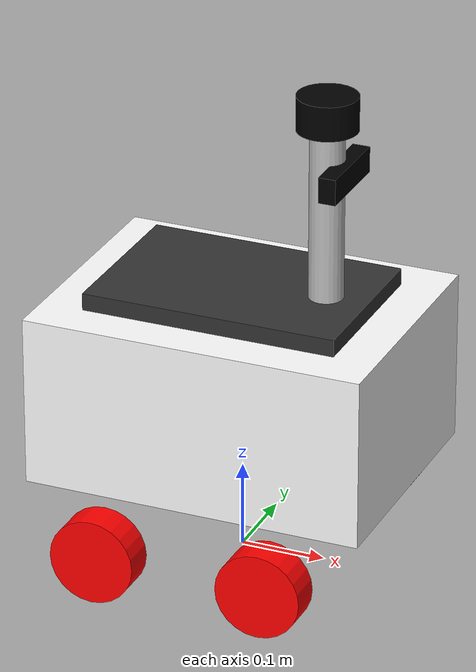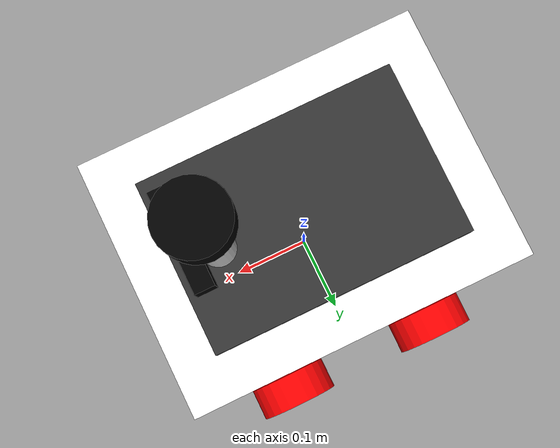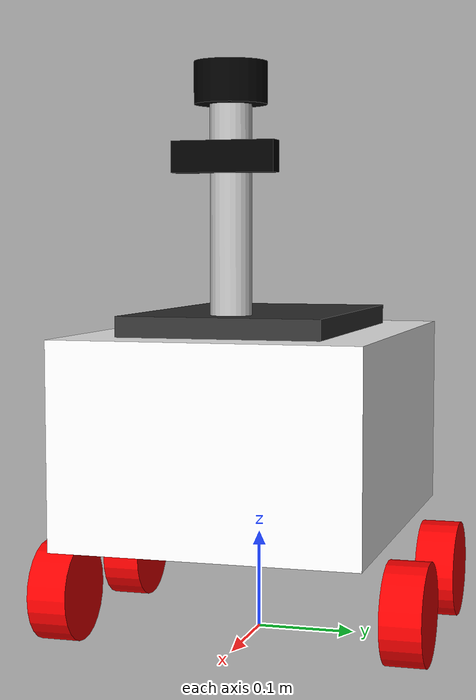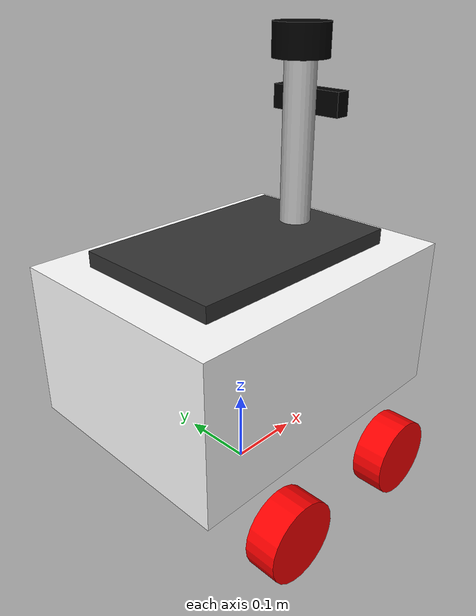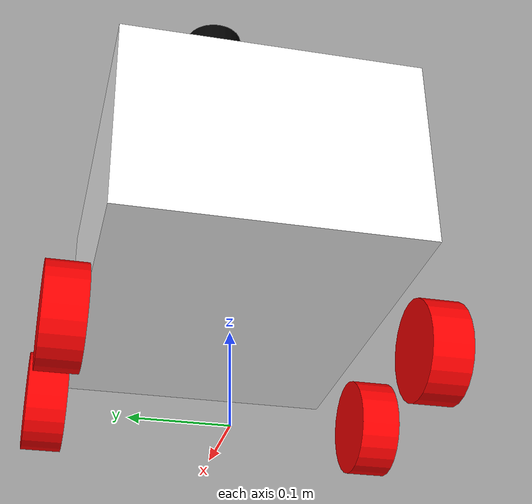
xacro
<?xml version="1.0"?>
<robot xmlns:xacro="http://www.ros.org/wiki/xacro" name="fusion_bot">
    <!-- Referring to the inertial macros -->
    <xacro:include filename="inertial_macros.xacro" />
    <!-- Referring to the ros2_control macros -->
    <xacro:include filename="ros2_control.xacro" />

    <!-- The "shadow" on the floor to lift up the base_link -->
    <link name="base_footprint"></link>

    <!-- BASE LINK: The absolute center point of the robot -->
    <link name="base_link">
    </link>

    <joint name="base_footprint_joint" type="fixed">
        <parent link="base_footprint"/>
        <child link="base_link"/>
        <!-- Lift the base_link up by the radius of the wheels (0.05m) -->
        <origin xyz="0 0 0.05" rpy="0 0 0"/>
    </joint>

    <!-- CHASSIS LINK: The physical body of the robot -->
    <link name="chassis">
        <visual>
            <origin xyz="0 0 0.16"/>
            <geometry>
                <!-- A box that is 0.4m long, 0.3m wide, and 0.2m tall -->
                <box size="0.4 0.3 0.2"/>
            </geometry>
            <material name="white">
                <color rgba="1 1 1 1"/>
            </material>
        </visual>
        <!-- The Hit-Box -->
        <collision>
            <origin xyz="0 0 0.16"/>
            <geometry>
                <box size="0.4 0.3 0.2"/>
            </geometry>
        </collision>
        <!-- The Mass and Math (Weighs 5kg) -->
        <xacro:inertial_box mass="5.0" x="0.4" y="0.3" z="0.2">
            <origin xyz="0 0 0.16"/>
        </xacro:inertial_box>

        <!-- We will add collision and inertia tags later! -->
    </link>

    <!-- CHASSIS JOINT: Attaching the chassis to the base_link -->
    <joint name="chassis_joint" type="fixed">
        <parent link="base_link"/>
        <child link="chassis"/>
        <!-- We shift the chassis slightly backward from the center so the drive wheels sit at the front -->
        <origin xyz=" 0 0 0"/>
    </joint>

    <!-- XACRO MACRO FOR DRIVE WHEELS -->
    <xacro:macro name="wheel" params="prefix x_offset y_offset">
        <link name="${prefix}_wheel">
            <visual>
                <geometry>
                    <!-- A wheel with a 5cm radius and 4cm width -->
                    <cylinder radius="0.05" length="0.04"/>
                </geometry>
                <material name="red">
                    <color rgba="1 0 0 1"/>
                </material>
            </visual>

            <!-- The Hit-Box -->
            <collision>
                <geometry>
                    <cylinder radius="0.05" length="0.04"/>
                </geometry>
            </collision>
            <!-- The Mass and Math (Each wheel weighs 0.5kg) -->
            <xacro:inertial_cylinder mass="0.5" length="0.04" radius="0.05">
                <origin xyz="0 0 0" rpy="0 0 0"/>
            </xacro:inertial_cylinder>
        </link>

        <!-- continuous joint for the wheels -->
        <joint name="${prefix}_wheel_joint" type="continuous">
            <parent link="base_link"/>
            <child link="${prefix}_wheel"/>
            <!-- rpy rotates the cylinder so it lays flat on its side -->
            <origin xyz="${x_offset} ${y_offset} 0" rpy="-1.5708 0 0"/>
            <axis xyz="0 0 1"/>
            <limit effort="10000" velocity="1000"/>
            <dynamics damping="0.2" friction="0.2"/>
        </joint>
    </xacro:macro>

    <!-- CALL THE MACRO TO SPAWN THE WHEELS -->
    <xacro:wheel prefix="front_left" x_offset="0.1" y_offset="0.175"/>
    <xacro:wheel prefix="front_right" x_offset="0.1" y_offset="-0.175"/>
    <xacro:wheel prefix="rear_left" x_offset="-0.1" y_offset="0.175"/>
    <xacro:wheel prefix="rear_right" x_offset="-0.1" y_offset="-0.175"/>

    <!-- AESTHETIC UPGRADES & SENSOR MOUNTS             -->

    <!-- TOP DECK -->
    <link name="top_deck">
        <visual>
            <geometry>
                <box size="0.3 0.2 0.02"/>
            </geometry>
            <material name="dark_grey">
                <color rgba="0.2 0.2 0.2 1"/>
            </material>
        </visual>
        <collision>
            <geometry>
                <box size="0.3 0.2 0.02"/>
            </geometry>
        </collision>
        <xacro:inertial_box mass="1.0" x="0.3" y="0.2" z="0.02">
            <origin xyz="0 0 0"/>
        </xacro:inertial_box>
    </link>

    <joint name="top_deck_joint" type="fixed">
        <parent link="chassis"/>
        <child link="top_deck"/>
        <origin xyz="0 0 0.27" rpy="0 0 0"/> <!-- 0.16 (center) + 0.1 (half chassis) + 0.01 (half deck) -->
    </joint>

    <!-- SENSOR MAST -->
    <link name="sensor_mast">
        <visual>
            <geometry>
                <cylinder radius="0.02" length="0.2"/>
            </geometry>
            <material name="silver">
                <color rgba="0.75 0.75 0.75 1"/>
            </material>
        </visual>
        <collision>
            <geometry>
                <cylinder radius="0.02" length="0.2"/>
            </geometry>
        </collision>
        <xacro:inertial_cylinder mass="0.2" radius="0.02" length="0.2">
            <origin xyz="0 0 0"/>
        </xacro:inertial_cylinder>
    </link>

    <joint name="sensor_mast_joint" type="fixed">
        <parent link="top_deck"/>
        <child link="sensor_mast"/>
        <origin xyz="0.1 0 0.11" rpy="0 0 0"/> <!-- Mounted near the front of the deck -->
    </joint>

    <!-- SENSORS (PHYSICAL LINKS)                       -->

    <!-- IMU -->
    <link name="imu_link">
        <xacro:inertial_box mass="0.01" x="0.01" y="0.01" z="0.01">
            <origin xyz="0 0 0"/>
        </xacro:inertial_box>
    </link>
    <joint name="imu_joint" type="fixed">
        <parent link="chassis"/>
        <child link="imu_link"/>
        <origin xyz="0 0 0.16" rpy="0 0 0"/> <!-- Dead center of gravity -->
    </joint>

    <!-- DEPTH CAMERA -->
    <link name="camera_link">
        <visual>
            <geometry>
                <box size="0.02 0.1 0.03"/>
            </geometry>
            <material name="black">
                <color rgba="0 0 0 1"/>
            </material>
        </visual>
        <collision>
            <geometry>
                <box size="0.02 0.1 0.03"/>
            </geometry>
        </collision>
        <xacro:inertial_box mass="0.1" x="0.02" y="0.1" z="0.03">
            <origin xyz="0 0 0"/>
        </xacro:inertial_box>
    </link>
    <joint name="camera_joint" type="fixed">
        <parent link="sensor_mast"/>
        <child link="camera_link"/>
        <origin xyz="0.02 0 0.05" rpy="0 0 0"/> <!-- Front face of the mast -->
    </joint>

    <!-- LiDAR -->
    <link name="lidar_link">
        <visual>
            <geometry>
                <cylinder radius="0.035" length="0.04"/>
            </geometry>
            <material name="black"/>
        </visual>
        <collision>
            <geometry>
                <cylinder radius="0.035" length="0.04"/>
            </geometry>
        </collision>
        <xacro:inertial_cylinder mass="0.15" radius="0.035" length="0.04">
            <origin xyz="0 0 0"/>
        </xacro:inertial_cylinder>
    </link>
    <joint name="lidar_joint" type="fixed">
        <parent link="sensor_mast"/>
        <child link="lidar_link"/>
        <origin xyz="0 0 0.12" rpy="0 0 0"/> <!-- Top of the mast -->
    </joint>

    <!-- GAZEBO PLUGINS (DIGITAL HARDWARE)              -->

    <gazebo reference="imu_link">
        <sensor name="imu_sensor" type="imu">
            <always_on>1</always_on>
            <update_rate>100</update_rate>
            <visualize>true</visualize>
            <topic>imu</topic>
        </sensor>
    </gazebo>

    <gazebo reference="camera_link">
        <sensor name="depth_camera" type="rgbd_camera">
            <always_on>1</always_on>
            <update_rate>30</update_rate>
            <topic>camera</topic>
            <camera>
                <horizontal_fov>1.047</horizontal_fov>
                <image>
                    <width>640</width>
                    <height>480</height>
                </image>
                <clip>
                    <near>0.1</near>
                    <far>10.0</far>
                </clip>
            </camera>
        </sensor>
    </gazebo>

    <gazebo reference="lidar_link">
        <sensor name="lidar" type="gpu_lidar">
            <always_on>1</always_on>
            <update_rate>10</update_rate>
            <visualize>true</visualize>
            <topic>scan</topic>
            <ray>
                <scan>
                    <horizontal>
                        <samples>360</samples>
                        <resolution>1.0</resolution>
                        <min_angle>-3.14159</min_angle>
                        <max_angle>3.14159</max_angle>
                    </horizontal>
                </scan>
                <range>
                    <min>0.15</min>
                    <max>12.0</max>
                    <resolution>0.015</resolution>
                </range>
                <noise>
                    <type>gaussian</type>
                    <mean>0.0</mean>
                    <stddev>0.01</stddev>
                </noise>
            </ray>
        </sensor>
    </gazebo>

</robot>

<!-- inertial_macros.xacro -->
<robot xmlns:xacro="http://www.ros.org/wiki/xacro">
    <!-- Specify mass, length, width, height -->
    <xacro:macro name="inertial_box" params="mass x y z *origin">
        <inertial>
            <xacro:insert_block name="origin"/>
            <mass value="${mass}" />
            <inertia ixx="${(1.0/12.0) * mass * (y*y+z*z)}" ixy="0.0" ixz="0.0"
                     iyy="${(1.0/12.0) * mass * (x*x+z*z)}" iyz="0.0"
                     izz="${(1.0/12.0) * mass * (x*x+y*y)}" />
        </inertial>
    </xacro:macro>

    <xacro:macro name="inertial_cylinder" params="mass length radius *origin">
        <inertial>
            <xacro:insert_block name="origin"/>
            <mass value="${mass}" />
            <inertia ixx="${(1.0/12.0) * mass * (3*radius*radius + length*length)}" ixy="0.0" ixz="0.0"
                     iyy="${(1.0/12.0) * mass * (3*radius*radius + length*length)}" iyz="0.0"
                     izz="${(1.0/2.0) * mass * (radius*radius)}" />
        </inertial>
    </xacro:macro>
</robot>
